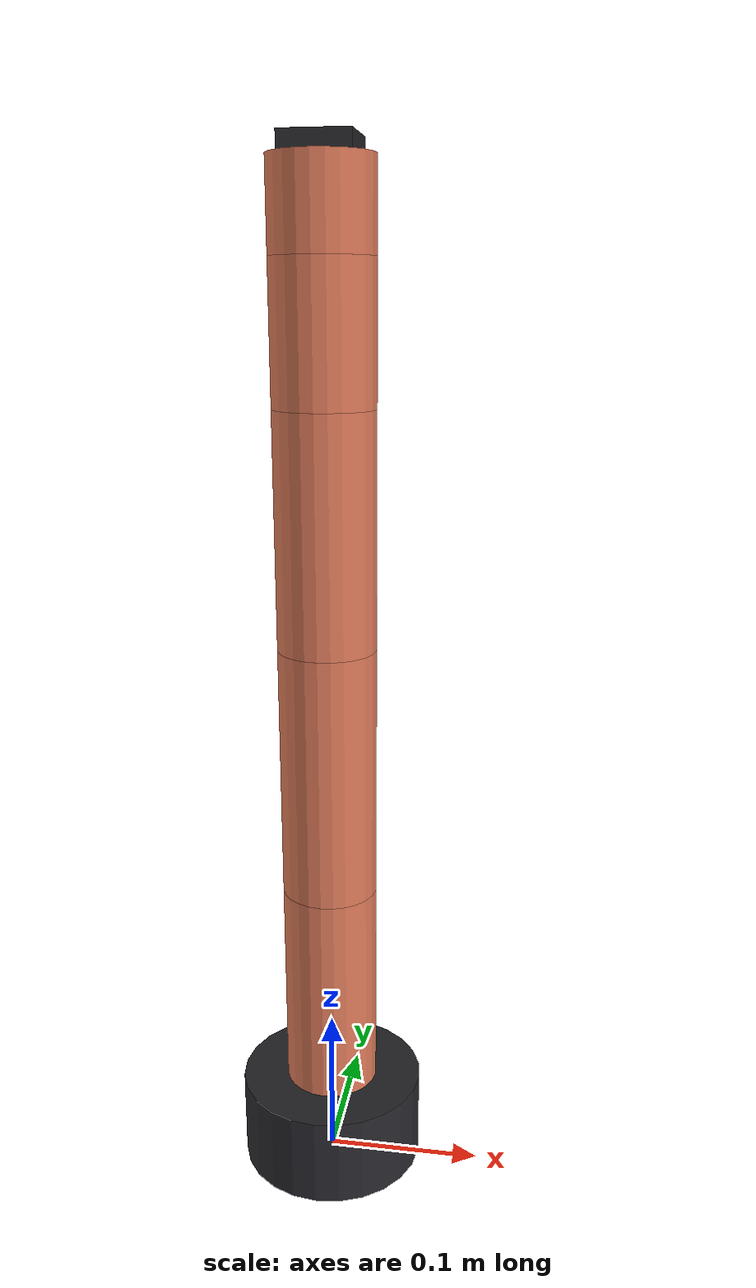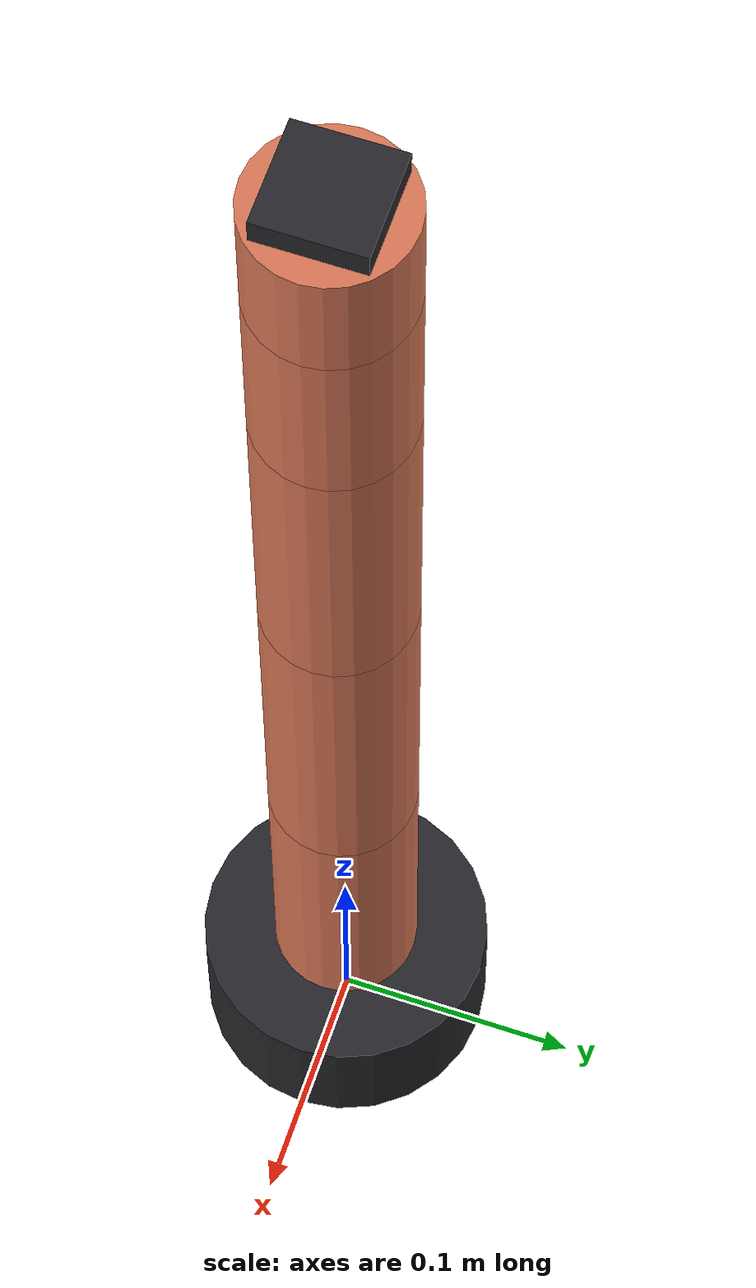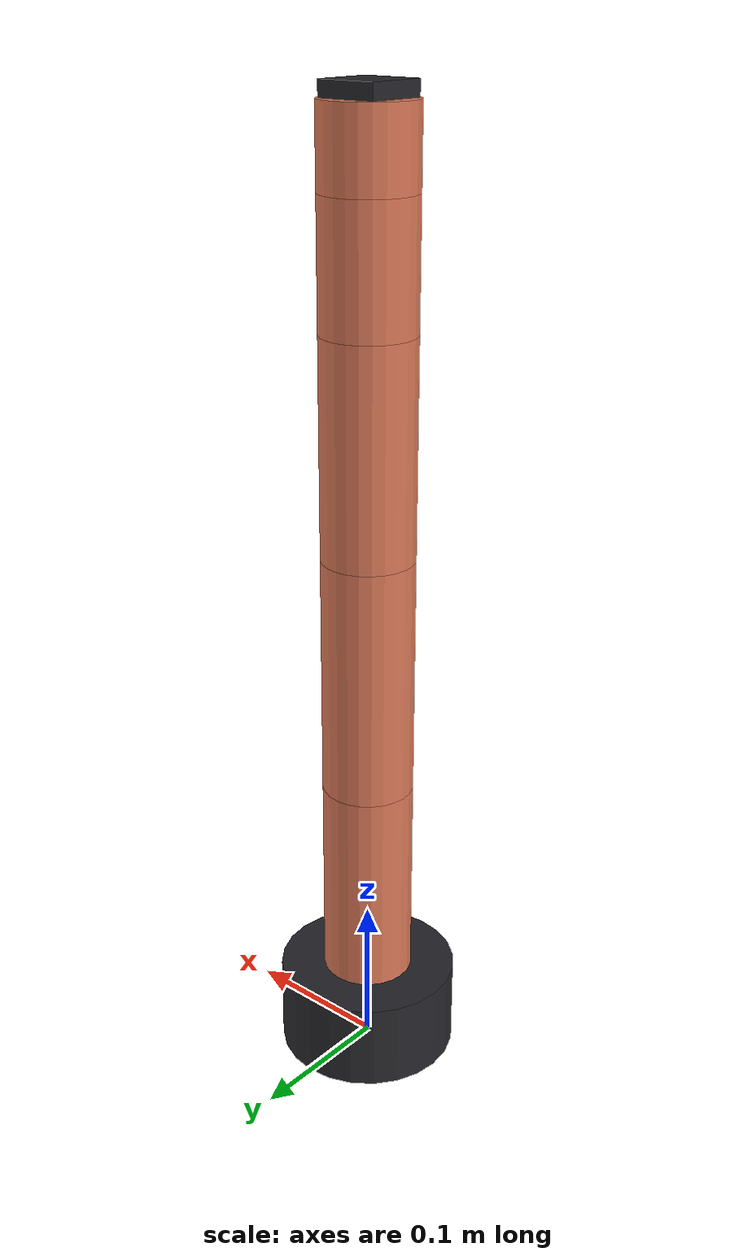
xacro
<?xml version="1.0"?>
<robot name="robot_arm" xmlns:xacro="http://www.ros.org/wiki/xacro">

  <!-- ============ tunable parameters ============ -->
  <xacro:property name="base_h"   value="0.06"/>   <!-- base height -->
  <xacro:property name="l1"       value="0.14"/>   <!-- shoulder link -->
  <xacro:property name="l2"       value="0.16"/>   <!-- upper arm -->
  <xacro:property name="l3"       value="0.14"/>   <!-- forearm -->
  <xacro:property name="l4"       value="0.08"/>   <!-- wrist -->
  <xacro:property name="r"        value="0.03"/>   <!-- link radius -->
  <xacro:property name="jlim"     value="2.9"/>    <!-- ±rad joint limit -->
  <xacro:property name="effort"   value="20.0"/>
  <xacro:property name="vel"      value="2.0"/>

  <material name="accent"><color rgba="0.85 0.47 0.34 1.0"/></material>
  <material name="dark">  <color rgba="0.15 0.15 0.17 1.0"/></material>

  <!-- reusable cylinder link with inertia (needed by ros2_control/gazebo) -->
  <xacro:macro name="arm_link" params="name length material:=accent">
    <link name="${name}">
      <visual>
        <origin xyz="0 0 ${length/2}" rpy="0 0 0"/>
        <geometry><cylinder radius="${r}" length="${length}"/></geometry>
        <material name="${material}"/>
      </visual>
      <collision>
        <origin xyz="0 0 ${length/2}" rpy="0 0 0"/>
        <geometry><cylinder radius="${r}" length="${length}"/></geometry>
      </collision>
      <inertial>
        <origin xyz="0 0 ${length/2}"/>
        <mass value="0.5"/>
        <inertia ixx="0.001" iyy="0.001" izz="0.001" ixy="0" ixz="0" iyz="0"/>
      </inertial>
    </link>
  </xacro:macro>

  <!-- ============ world anchor ============ -->
  <link name="world"/>
  <link name="base_link">
    <visual>
      <origin xyz="0 0 ${base_h/2}"/>
      <geometry><cylinder radius="0.06" length="${base_h}"/></geometry>
      <material name="dark"/>
    </visual>
    <collision>
      <origin xyz="0 0 ${base_h/2}"/>
      <geometry><cylinder radius="0.06" length="${base_h}"/></geometry>
    </collision>
    <inertial><mass value="1.0"/>
      <inertia ixx="0.002" iyy="0.002" izz="0.002" ixy="0" ixz="0" iyz="0"/>
    </inertial>
  </link>
  <joint name="world_to_base" type="fixed">
    <parent link="world"/><child link="base_link"/>
  </joint>

  <!-- ============ the 6 links ============ -->
  <xacro:arm_link name="link1" length="${l1}"/>
  <xacro:arm_link name="link2" length="${l2}"/>
  <xacro:arm_link name="link3" length="${l3}"/>
  <xacro:arm_link name="link4" length="${l4}"/>
  <xacro:arm_link name="link5" length="0.05"/>
  <link name="tool0">   <!-- end-effector mount flange -->
    <visual>
      <geometry><box size="0.04 0.04 0.02"/></geometry>
      <material name="dark"/>
    </visual>
    <inertial><mass value="0.1"/>
      <inertia ixx="0.0001" iyy="0.0001" izz="0.0001" ixy="0" ixz="0" iyz="0"/>
    </inertial>
  </link>

  <!-- ============ the 6 joints (waist,shoulder,elbow,3x wrist) ============ -->
  <joint name="joint1" type="revolute">   <!-- waist: rotate about Z -->
    <parent link="base_link"/><child link="link1"/>
    <origin xyz="0 0 ${base_h}"/>
    <axis xyz="0 0 1"/>
    <limit lower="-${jlim}" upper="${jlim}" effort="${effort}" velocity="${vel}"/>
  </joint>
  <joint name="joint2" type="revolute">   <!-- shoulder: pitch about Y -->
    <parent link="link1"/><child link="link2"/>
    <origin xyz="0 0 ${l1}"/>
    <axis xyz="0 1 0"/>
    <limit lower="-${jlim}" upper="${jlim}" effort="${effort}" velocity="${vel}"/>
  </joint>
  <joint name="joint3" type="revolute">   <!-- elbow: pitch about Y -->
    <parent link="link2"/><child link="link3"/>
    <origin xyz="0 0 ${l2}"/>
    <axis xyz="0 1 0"/>
    <limit lower="-${jlim}" upper="${jlim}" effort="${effort}" velocity="${vel}"/>
  </joint>
  <joint name="joint4" type="revolute">   <!-- wrist roll: about Z -->
    <parent link="link3"/><child link="link4"/>
    <origin xyz="0 0 ${l3}"/>
    <axis xyz="0 0 1"/>
    <limit lower="-${jlim}" upper="${jlim}" effort="${effort}" velocity="${vel}"/>
  </joint>
  <joint name="joint5" type="revolute">   <!-- wrist pitch: about Y -->
    <parent link="link4"/><child link="link5"/>
    <origin xyz="0 0 ${l4}"/>
    <axis xyz="0 1 0"/>
    <limit lower="-${jlim}" upper="${jlim}" effort="${effort}" velocity="${vel}"/>
  </joint>
  <joint name="joint6" type="revolute">   <!-- wrist roll: about Z -->
    <parent link="link5"/><child link="tool0"/>
    <origin xyz="0 0 0.05"/>
    <axis xyz="0 0 1"/>
    <limit lower="-${jlim}" upper="${jlim}" effort="${effort}" velocity="${vel}"/>
  </joint>

  <!-- ============ ros2_control: mock hardware for now ============ -->
  <!-- swap mock_components/GenericSystem for your real servo driver later -->
  <ros2_control name="arm_hw" type="system">
    <hardware>
      <plugin>mock_components/GenericSystem</plugin>
    </hardware>
    <xacro:macro name="ji" params="name">
      <joint name="${name}">
        <command_interface name="position"/>
        <state_interface name="position"/>
        <state_interface name="velocity"/>
      </joint>
    </xacro:macro>
    <xacro:ji name="joint1"/>
    <xacro:ji name="joint2"/>
    <xacro:ji name="joint3"/>
    <xacro:ji name="joint4"/>
    <xacro:ji name="joint5"/>
    <xacro:ji name="joint6"/>
  </ros2_control>

</robot>
